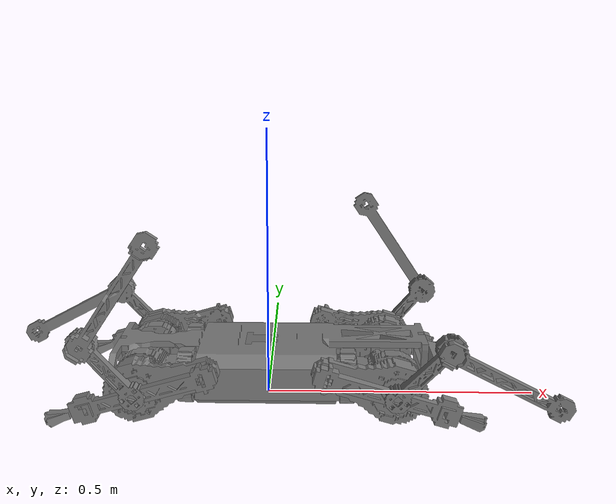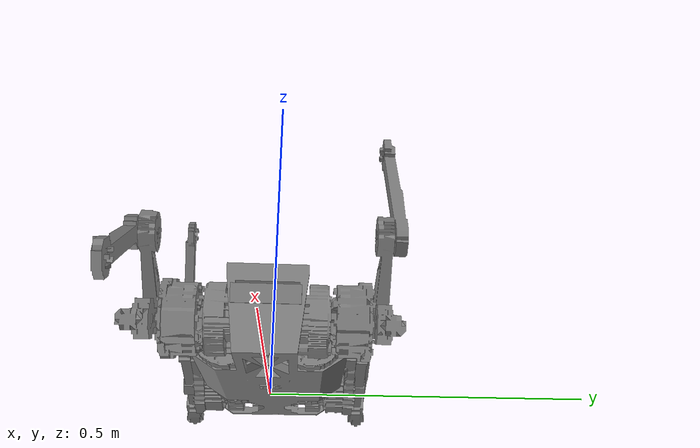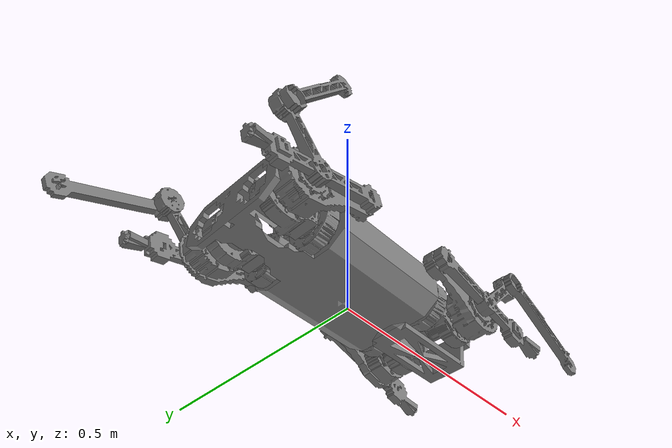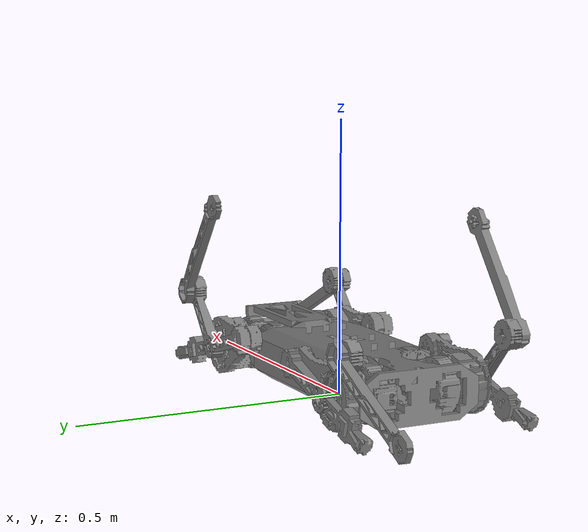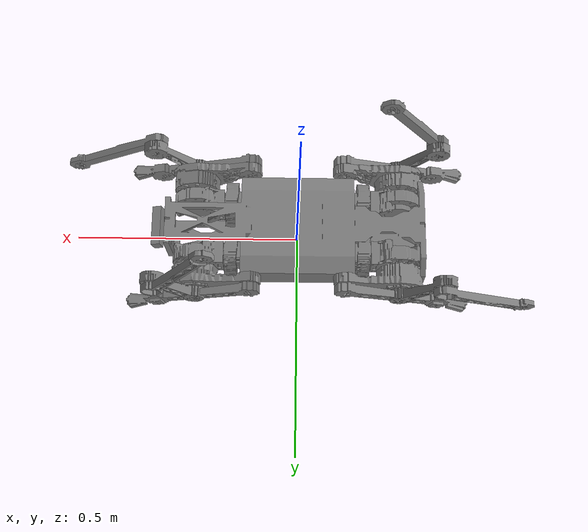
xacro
<?xml version="1.0"?>
<robot name="quadruped" xmlns:xacro="http://www.ros.org/wiki/xacro">
  <xacro:include filename="$(find wojtek_description)/urdf/body.urdf.xacro" />

  <xacro:arg name="kp" default="40.0" />
  <xacro:arg name="kd" default="1.6" />
  <xacro:arg name="max_torque" default="9.0" />
  <xacro:arg name="tau_ff" default="false" />
  <xacro:arg name="tau_ff_scale" default="0.0" />
  <xacro:arg name="hw" default="mock" />
  <!-- Physics scene for hw:=mujoco. The launch resolves this from this
       package's share; the default here is for running the xacro by hand. -->
  <xacro:arg name="model_xml" default="$(find wojtek_pc)/config/scene_mjx.xml" />
  <xacro:arg name="boot_pose" default="home" />
  <xacro:arg name="folded_ctrl" default="" />
  <!-- Bench mode, the simulated analogue of the real one: physics runs but
       commands are not applied, so the robot goes limp. Ignored by the mock,
       which has no torque to withhold. -->
  <xacro:arg name="dry_run" default="false" />
  <xacro:arg name="use_imu" default="true" />
  <xacro:arg name="legs" default="stock" />
  <!-- The URDF/MuJoCo sign and offset table for these legs, from
       wojtek_policy's config. The default is the stock legs' map. -->
  <xacro:arg name="joint_map_yaml" default="$(find wojtek_policy)/config/joint_map.yaml" />
  <xacro:arg name="ground_truth_frame" default="base_link" />

  <xacro:wojtek_body with_camera="true" legs="$(arg legs)" />

  <xacro:macro name="wojtek_sim_joint" params="name kp kd max_torque tau_ff:=false tau_ff_scale:=0.0">
    <joint name="${name}">
      <command_interface name="position" />
      <xacro:if value="${tau_ff}">
        <command_interface name="effort" />
      </xacro:if>
      <state_interface name="position">
        <param name="initial_value">0.0</param>
      </state_interface>
      <state_interface name="velocity">
        <param name="initial_value">0.0</param>
      </state_interface>
      <state_interface name="effort">
        <param name="initial_value">0.0</param>
      </state_interface>
      <!-- The simulated hardware keeps each drive's response_age at 0.0. -->
      <state_interface name="response_age">
        <param name="initial_value">0.0</param>
      </state_interface>
      <param name="ddq_kp">${kp}</param>
      <param name="ddq_kd">${kd}</param>
      <param name="max_torque">${max_torque - (tau_ff_scale if tau_ff else 0.0)}</param>
      <param name="tau_ff_scale">${tau_ff_scale if tau_ff else 0.0}</param>
    </joint>
  </xacro:macro>

  <ros2_control name="WojtekSim" type="system">
    <hardware>
      <xacro:if value="${'$(arg hw)' == 'mock'}">
        <plugin>mock_components/GenericSystem</plugin>
        <xacro:unless value="$(arg tau_ff)">
          <param name="calculate_dynamics">true</param>
        </xacro:unless>
      </xacro:if>
      <xacro:unless value="${'$(arg hw)' == 'mock'}">
        <plugin>wojtek_mujoco_hardware_interface/MujocoHardwareInterface</plugin>
        <param name="model_xml">$(arg model_xml)</param>
        <!-- The MJX XMLs ship in a share directory, the meshes they reference
             in another: the plugin restages the scene with meshdir rewritten. -->
        <param name="mesh_dir">$(find wojtek_description)/meshes</param>
        <!-- The URDF/MuJoCo sign and offset table, read from the same file
             wojtek_policy reads. No second copy of the fitted values. -->
        <param name="joint_map_yaml">$(arg joint_map_yaml)</param>
        <param name="initial_pose">$(arg boot_pose)</param>
        <param name="folded_ctrl">$(arg folded_ctrl)</param>
        <param name="dry_run">$(arg dry_run)</param>
        <param name="imu_mount_rpy">0 0 -1.5707963</param>
        <param name="ground_truth_child_frame">$(arg ground_truth_frame)</param>
      </xacro:unless>
    </hardware>

    <xacro:wojtek_sim_joint name="front_left_first_joint" kp="$(arg kp)" kd="$(arg kd)" max_torque="$(arg max_torque)" tau_ff="$(arg tau_ff)" tau_ff_scale="$(arg tau_ff_scale)" />
    <xacro:wojtek_sim_joint name="front_left_second_joint" kp="$(arg kp)" kd="$(arg kd)" max_torque="$(arg max_torque)" tau_ff="$(arg tau_ff)" tau_ff_scale="$(arg tau_ff_scale)" />
    <xacro:wojtek_sim_joint name="front_left_third_joint" kp="$(arg kp)" kd="$(arg kd)" max_torque="$(arg max_torque)" tau_ff="$(arg tau_ff)" tau_ff_scale="$(arg tau_ff_scale)" />

    <xacro:wojtek_sim_joint name="front_right_first_joint" kp="$(arg kp)" kd="$(arg kd)" max_torque="$(arg max_torque)" tau_ff="$(arg tau_ff)" tau_ff_scale="$(arg tau_ff_scale)" />
    <xacro:wojtek_sim_joint name="front_right_second_joint" kp="$(arg kp)" kd="$(arg kd)" max_torque="$(arg max_torque)" tau_ff="$(arg tau_ff)" tau_ff_scale="$(arg tau_ff_scale)" />
    <xacro:wojtek_sim_joint name="front_right_third_joint" kp="$(arg kp)" kd="$(arg kd)" max_torque="$(arg max_torque)" tau_ff="$(arg tau_ff)" tau_ff_scale="$(arg tau_ff_scale)" />

    <xacro:wojtek_sim_joint name="rear_right_first_joint" kp="$(arg kp)" kd="$(arg kd)" max_torque="$(arg max_torque)" tau_ff="$(arg tau_ff)" tau_ff_scale="$(arg tau_ff_scale)" />
    <xacro:wojtek_sim_joint name="rear_right_second_joint" kp="$(arg kp)" kd="$(arg kd)" max_torque="$(arg max_torque)" tau_ff="$(arg tau_ff)" tau_ff_scale="$(arg tau_ff_scale)" />
    <xacro:wojtek_sim_joint name="rear_right_third_joint" kp="$(arg kp)" kd="$(arg kd)" max_torque="$(arg max_torque)" tau_ff="$(arg tau_ff)" tau_ff_scale="$(arg tau_ff_scale)" />

    <xacro:wojtek_sim_joint name="rear_left_first_joint" kp="$(arg kp)" kd="$(arg kd)" max_torque="$(arg max_torque)" tau_ff="$(arg tau_ff)" tau_ff_scale="$(arg tau_ff_scale)" />
    <xacro:wojtek_sim_joint name="rear_left_second_joint" kp="$(arg kp)" kd="$(arg kd)" max_torque="$(arg max_torque)" tau_ff="$(arg tau_ff)" tau_ff_scale="$(arg tau_ff_scale)" />
    <xacro:wojtek_sim_joint name="rear_left_third_joint" kp="$(arg kp)" kd="$(arg kd)" max_torque="$(arg max_torque)" tau_ff="$(arg tau_ff)" tau_ff_scale="$(arg tau_ff_scale)" />

    <xacro:if value="$(arg use_imu)">
      <sensor name="imu">
        <state_interface name="orientation.x">
          <param name="initial_value">0.0</param>
        </state_interface>
        <state_interface name="orientation.y">
          <param name="initial_value">0.0</param>
        </state_interface>
        <state_interface name="orientation.z">
          <param name="initial_value">0.0</param>
        </state_interface>
        <state_interface name="orientation.w">
          <param name="initial_value">1.0</param>
        </state_interface>
        <state_interface name="magnetometer.x">
          <param name="initial_value">20.0</param>
        </state_interface>
        <state_interface name="magnetometer.y">
          <param name="initial_value">0.0</param>
        </state_interface>
        <state_interface name="magnetometer.z">
          <param name="initial_value">-44.0</param>
        </state_interface>
        <state_interface name="angular_velocity.x">
          <param name="initial_value">0.0</param>
        </state_interface>
        <state_interface name="angular_velocity.y">
          <param name="initial_value">0.0</param>
        </state_interface>
        <state_interface name="angular_velocity.z">
          <param name="initial_value">0.0</param>
        </state_interface>
        <state_interface name="linear_acceleration.x">
          <param name="initial_value">0.0</param>
        </state_interface>
        <state_interface name="linear_acceleration.y">
          <param name="initial_value">0.0</param>
        </state_interface>
        <state_interface name="linear_acceleration.z">
          <param name="initial_value">9.81</param>
        </state_interface>
      </sensor>
    </xacro:if>
  </ros2_control>
</robot>

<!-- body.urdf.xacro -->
<robot xmlns:xacro="http://www.ros.org/wiki/xacro" name="wojtek_body">
  <xacro:include filename="$(find wojtek_description)/urdf/inertia.urdf.xacro" />
  <xacro:include filename="$(find wojtek_description)/urdf/leg.urdf.xacro" />
  <xacro:include filename="$(find wojtek_description)/urdf/leg_v627.urdf.xacro" />

  <xacro:macro name="camera_mount">
    <link name="camera_link">
      <visual>
        <!-- Camera-body sized marker so the mount is visible in RViz;
             massless. -->
        <origin xyz="-0.01 0 0" rpy="0 0 0" />
        <geometry>
          <box size="0.02 0.09 0.025" />
        </geometry>
        <xacro:grey_material />
      </visual>
    </link>
    <joint name="camera_joint" type="fixed">
      <parent link="base_link" />
      <child link="camera_link" />
      <origin xyz="0.32 0.0 0.07" rpy="0 0.2617994 0" />
    </joint>
  </xacro:macro>

  <xacro:macro name="wojtek_body" params="with_camera:=false with_camera_mount:=false legs:=stock">
    <material name="grey">
      <color rgba="0.5 0.5 0.5 1" />
    </material>

    <link name="base_link" />

    <link name="body_link">
      <visual>
        <origin rpy="0 0 ${pi}" xyz="0.0 0 0" />
        <geometry name="base_link">
          <mesh filename="package://wojtek_description/meshes/base_link.dae" />
        </geometry>

        <xacro:grey_material />
      </visual>
      <collision>
        <origin rpy="0 0 ${pi}" xyz="0.0 0 0" />
        <geometry name="base_link">
          <mesh filename="package://wojtek_description/meshes/base_link.dae" />
        </geometry>
      </collision>
      <xacro:box_inertia m="50.0" w="0.59" h="0.225" d="0.1" xyz="0.01 0 0.06" />
    </link>

    <joint name="body_to_base_joint" type="fixed">
      <parent link="base_link" />
      <child link="body_link" />
      <origin xyz="0.0 0.0 0.0" rpy="0.0 0.0 0.0" />
    </joint>

    <link name="imu_link" />
    <joint name="imu_joint" type="fixed">
      <parent link="base_link" />
      <child link="imu_link" />
      <origin xyz="0.053 0.0 0.012" rpy="0.0 0.0 -1.5707963" />
    </joint>

    <xacro:if value="${with_camera_mount}">
      <xacro:camera_mount />
    </xacro:if>

    <xacro:if value="${with_camera}">
      <xacro:camera_mount />

      <link name="camera_depth_frame" />
      <joint name="camera_depth_joint" type="fixed">
        <parent link="camera_link" />
        <child link="camera_depth_frame" />
        <origin xyz="0 0 0" rpy="0 0 0" />
      </joint>
      <link name="camera_depth_optical_frame" />
      <joint name="camera_depth_optical_joint" type="fixed">
        <parent link="camera_depth_frame" />
        <child link="camera_depth_optical_frame" />
        <origin xyz="0 0 0" rpy="${-pi/2} 0 ${-pi/2}" />
      </joint>

      <link name="camera_color_frame" />
      <joint name="camera_color_joint" type="fixed">
        <parent link="camera_link" />
        <child link="camera_color_frame" />
        <origin xyz="0 0 0" rpy="0 0 0" />
      </joint>
      <link name="camera_color_optical_frame" />
      <joint name="camera_color_optical_joint" type="fixed">
        <parent link="camera_color_frame" />
        <child link="camera_color_optical_frame" />
        <origin xyz="0 0 0" rpy="${-pi/2} 0 ${-pi/2}" />
      </joint>
    </xacro:if>

    <xacro:if value="${legs == 'stock'}">
    <xacro:leg prefix="rear_left" xyz="-0.131 0.06 0.06" rpy="0 0 ${pi}" first_joint_offset="${pi}"
      third_joint_gear_correction_dir="-1.0" />
    <xacro:leg prefix="rear_right" xyz="-0.131 -0.06 0.06" rpy="0 0 ${pi}" first_joint_offset="0.0"
      third_joint_gear_correction_dir="1.0" />

    <xacro:leg prefix="front_right" xyz="0.131 -0.06 0.06" rpy="0 0 0" first_joint_offset="${pi}"
      third_joint_gear_correction_dir="-1.0" />
    <xacro:leg prefix="front_left" xyz="0.131 0.06 0.06" rpy="0 0 0" first_joint_offset="0.0"
      third_joint_gear_correction_dir="1.0"
    />
    </xacro:if>
    <xacro:if value="${legs == 'legs_v627'}">
      <xacro:leg_v627 prefix="rear_left" xyz="-0.131 0.06 0.06" rpy="0 0 ${pi}"
        first_joint_offset="${pi}" dir="-1.0" side="1.0" rear="true" />
      <xacro:leg_v627 prefix="rear_right" xyz="-0.131 -0.06 0.06" rpy="0 0 ${pi}"
        first_joint_offset="0.0" dir="1.0" side="-1.0" rear="true" />
      <xacro:leg_v627 prefix="front_right" xyz="0.131 -0.06 0.06" rpy="0 0 0"
        first_joint_offset="${pi}" dir="-1.0" side="-1.0" rear="false" />
      <xacro:leg_v627 prefix="front_left" xyz="0.131 0.06 0.06" rpy="0 0 0"
        first_joint_offset="0.0" dir="1.0" side="1.0" rear="false" />
    </xacro:if>
    <xacro:unless value="${legs in ('stock', 'legs_v627')}">
      ${xacro.fatal("wojtek_body: legs must be 'stock' or 'legs_v627', got '" + legs + "'")}
    </xacro:unless>
  </xacro:macro>
</robot>

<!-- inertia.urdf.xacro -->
<robot xmlns:xacro="http://www.ros.org/wiki/xacro">
  <xacro:macro name="cylinder_inertia" params="m r h xyz:='0.0 0.0 0.0' rpy:='0.0 0.0 0.0'">
    <inertial>
      <origin xyz="${xyz}" rpy="${rpy}"/>
      <mass value="${m}"/>
      <inertia  ixx="${m*(3*r*r+h*h)/12}" ixy = "0" ixz = "0"
                iyy="${m*(3*r*r+h*h)/12}" iyz = "0"
                izz="${m*r*r/2}"/>
    </inertial>
  </xacro:macro>

  <xacro:macro name="box_inertia" params="m w h d xyz:='0.0 0.0 0.0' rpy:='0.0 0.0 0.0'">
    <inertial>
      <origin xyz="${xyz}" rpy="${rpy}"/>
      <mass value="${m}"/>
      <inertia  ixx="${(m/12) * (h*h + d*d)}" ixy="0.0" ixz="0.0"
                iyy="${(m/12) * (w*w + d*d)}" iyz="0.0"
                izz="${(m/12) * (w*w + h*h)}"/>
    </inertial>
  </xacro:macro>

  <xacro:macro name="inertia_stub">
    <inertial>
      <mass value="2e-06"/>
      <inertia ixx="1.1e-09" ixy="0" ixz="0" iyy="1.1e-09" iyz="0" izz="1.1e-09"/>
    </inertial>
  </xacro:macro>

  <xacro:macro name="geometry_stub">
        <origin rpy=" 0 0 0" xyz="0.0 0.0  0.0 " />
        <geometry>
          <box size="0.0001 0.0001 0.0001 "/>
        </geometry>
  </xacro:macro>

  <xacro:macro name="grey_material">
    <material name="grey">
      <color rgba="0.5 0.5 0.5 1.0"/>
    </material>
  </xacro:macro>
</robot>

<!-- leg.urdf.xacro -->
<robot xmlns:xacro="http://www.ros.org/wiki/xacro" name="quadruped_robot">
  <xacro:include filename="$(find wojtek_description)/urdf/inertia.urdf.xacro" />

  <!-- Macro to define a leg -->
  <xacro:macro name="leg"
    params="prefix xyz rpy first_x:=0.1 first_joint_offset third_joint_gear_correction_dir ">

    <xacro:property name="zero_angle_offset" value="0.17692153346630435" />
    <!-- Define the thigh -->

    <link name="${prefix}_leg_base_link" />

    <!-- Define the joints -->
    <joint
      name="${prefix}_base_to_leg_joint" type="fixed">
      <parent link="base_link" />
      <child link="${prefix}_leg_base_link" />
      <origin xyz="${xyz}" rpy="${rpy}" />
    </joint>

    <xacro:first_link
      name="${prefix}_first_link" />

    <joint
      name="${prefix}_leg_base_to_first_link_joint" type="fixed">
      <parent link="${prefix}_leg_base_link" />
      <child link="${prefix}_first_link" />
      <origin xyz="0.0 0.0 0.0" rpy="${-pi/2.0} 0.0 0.0" />
    </joint>

    <xacro:second_link
      name="${prefix}_second_link" />

    <joint name="${prefix}_first_joint"
      type="revolute">
      <parent link="${prefix}_first_link" />
      <child link="${prefix}_second_link" />
      <origin xyz="0.031 0.0 0.0" rpy="${first_joint_offset} 0.0 0.0" />
      <axis xyz="1 0 0" />
      <limit effort="100.0" lower="-3.1416" upper="3.1416" velocity="10.0" />
      <dynamics damping="0.1" friction="0.1" />
    </joint>

    <xacro:third_link
      name="${prefix}_third_link" />

    <xacro:property name="gear_ratio" value="0.0" />

    <xacro:property name="second_joint_gear_correction" value="${third_joint_gear_correction_dir*0.2793}" />
    <xacro:property name="third_joint_gear_correction" value="${-1.117+pi}" />

    <joint name="${prefix}_second_joint"
      type="revolute">
      <parent link="${prefix}_second_link" />
      <child link="${prefix}_third_link" />
      <origin xyz="0.064 0.0 0.023"
        rpy="0.0 0.0 ${pi + second_joint_gear_correction} " />
      <axis xyz="0 0 1" />
      <limit effort="100.0" lower="1.57" upper="4.71" velocity="10.0" />
      <dynamics damping="0.1" friction="0.1" />
    </joint>

    <xacro:fourth_link
      name="${prefix}_fourth_link" />

    <joint name="${prefix}_third_joint"
      type="revolute">
      <parent link="${prefix}_third_link" />
      <child link="${prefix}_fourth_link" />
      <origin xyz="0.0 0.0 0.0555"
        rpy="0.0 0.0 ${third_joint_gear_correction_dir*third_joint_gear_correction}" />
      <axis xyz="0 0 1" />
      <limit effort="100.0" lower="0.425" upper="5.8" velocity="10.0" />
      <dynamics damping="0.1" friction="0.1" />
    </joint>

    <xacro:fifth_link
      name="${prefix}_fifth_link" />

    <joint name="${prefix}_fourth_joint"
      type="revolute">
      <parent link="${prefix}_fourth_link" />
      <child link="${prefix}_fifth_link" />
      <origin xyz="0.125 0.0 0.0255" rpy="0.0 0.0 ${pi}" />
      <axis xyz="0 0 -1" />
      <limit effort="  2.0" lower="-0.8" upper="-2.9" velocity="10.0" />
      <dynamics damping="0.1" friction="0.1" />
    </joint>

    <xacro:sixth_link
      name="${prefix}_sixth_link" />

    <joint name="${prefix}_fifth_joint"
      type="revolute">
      <parent link="${prefix}_third_link" />
      <child link="${prefix}_sixth_link" />
      <origin xyz="-0.125 0.0 0.058" rpy="0.0 0.0 0.0" />
      <axis xyz="0 0 -1" />
      <limit effort="100.0" lower="-3.14" upper="3.14" velocity="10.0" />
      <dynamics damping="0.1" friction="0.1" />
    </joint>

  </xacro:macro>

  <xacro:macro name="first_link" params="name">
    <link name="${name}">
      <visual>
        <origin rpy="0 0 0" xyz="0.0 0 0.0" />
        <geometry>
          <mesh filename="package://wojtek_description/meshes/first_link.dae" />
        </geometry>
        <xacro:grey_material />
      </visual>
      <collision name="${name}_collision">
        <origin rpy="0 0 0" xyz="0.0 0 0.0" />
        <geometry>
          <mesh filename="package://wojtek_description/meshes/first_link.dae" />
        </geometry>
      </collision>
      <xacro:cylinder_inertia m="0.6" r="0.05" h="0.04" />
    </link>
  </xacro:macro>

  <xacro:macro name="second_link" params="name">
    <link name="${name}">
      <visual>
        <origin rpy="0 0 0" xyz="0.0 0 0.0" />
        <geometry>
          <mesh filename="package://wojtek_description/meshes/second_link.dae" />
        </geometry>
        <xacro:grey_material />
      </visual>
      <collision name="${name}_collision">
        <origin rpy="0 0 0" xyz="0.0 0 0.0" />
        <geometry>
          <mesh filename="package://wojtek_description/meshes/second_link.dae" />
        </geometry>
      </collision>
      <xacro:cylinder_inertia m="0.6" r="0.05" h="0.04" xyz="0.055 0  0" />
    </link>
  </xacro:macro>

  <xacro:macro name="third_link" params="name">
    <link name="${name}">
      <visual>
        <origin rpy="0 0 0" xyz="0.0 0 0.0" />
        <geometry>
          <mesh filename="package://wojtek_description/meshes/third_link.dae" />
        </geometry>
        <xacro:grey_material />
      </visual>
      <collision name="${name}_collision">
        <origin rpy="0 0 0" xyz="0.0 0 0.0" />
        <geometry>
          <mesh filename="package://wojtek_description/meshes/third_link.dae" />
        </geometry>
      </collision>
      <xacro:cylinder_inertia m="0.6" r="0.05" h="0.04" xyz="0.0 0  0.025" />
    </link>
  </xacro:macro>

  <xacro:macro name="fourth_link" params="name">
    <link name="${name}">
      <visual>
        <origin rpy="0 0 0" xyz="0.0 0 0.0" />
        <geometry>
          <mesh filename="package://wojtek_description/meshes/fourth_link.dae" />
        </geometry>
        <xacro:grey_material />
      </visual>
      <collision name="${name}_collision">
        <origin rpy="0 0 0" xyz="0.0 0 0.0" />
        <geometry>
          <mesh filename="package://wojtek_description/meshes/fourth_link.dae" />
        </geometry>
      </collision>
      <xacro:box_inertia m="0.04" w="0.175" h="0.025" d="0.0175" xyz="0.0625 0.0  0.015" />
    </link>
  </xacro:macro>

  <xacro:macro name="fifth_link" params="name">
    <link name="${name}">
      <visual>
        <origin rpy="0 0 0" xyz="0.0 0 0.0" />
        <geometry>
          <mesh filename="package://wojtek_description/meshes/fifth_link.dae" />
        </geometry>
        <xacro:grey_material />
      </visual>
      <collision name="${name}_collision">
        <origin rpy="0 0 0" xyz="0.0 0 0.0" />
        <geometry>
          <mesh filename="package://wojtek_description/meshes/fifth_link.dae" />
        </geometry>
      </collision>
      <xacro:box_inertia m="0.05" w="0.25" h="0.04" d="0.0175" xyz="0.105 0  0.0" />
    </link>
  </xacro:macro>

  <xacro:macro name="sixth_link" params="name">
    <link name="${name}">
      <visual>
        <origin rpy="0 0 0" xyz="0.0 0 0.0" />
        <geometry>
          <mesh filename="package://wojtek_description/meshes/sixth_link.dae" />
        </geometry>
        <xacro:grey_material />
      </visual>
      <collision name="${name}_collision">
        <origin rpy="0 0 0" xyz="0.0 0 0.0" />
        <geometry>
          <mesh filename="package://wojtek_description/meshes/sixth_link.dae" />
        </geometry>
      </collision>
      <xacro:box_inertia m="0.05" w="0.25" h="0.04" d="0.0175" xyz="0.105 0  0.0" />
    </link>
  </xacro:macro>

</robot>
